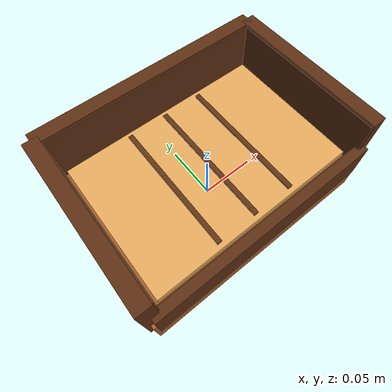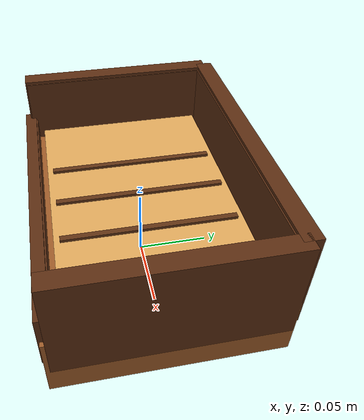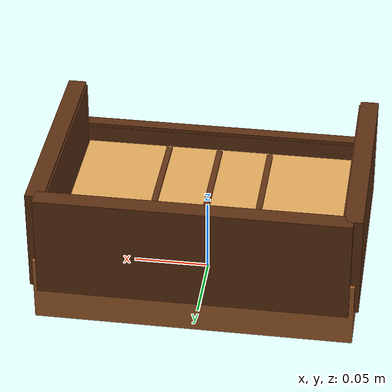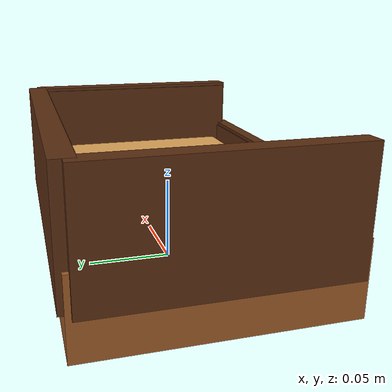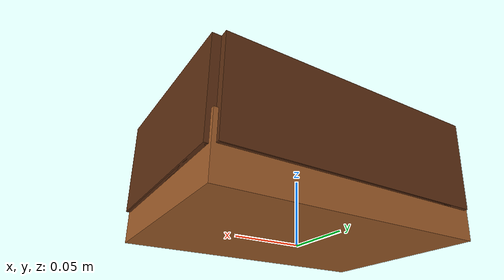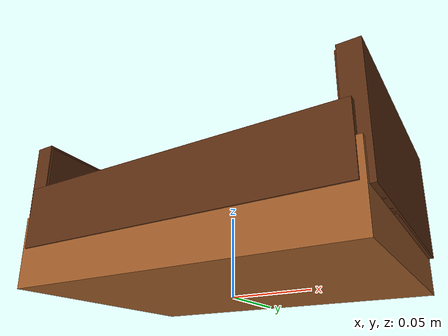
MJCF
<mujoco model="bottle_storage_rack">
  <asset>
    <material name="rack_plastic" rgba="0.62 0.36 0.16 1" specular="0.10" shininess="0.06" />
    <material name="rack_floor" rgba="0.88 0.66 0.36 1" specular="0.08" shininess="0.04" />
    <material name="rack_grain" rgba="0.38 0.20 0.08 1" specular="0.04" shininess="0.03" />
    <material name="rack_edge" rgba="0.36 0.18 0.07 1" specular="0.12" shininess="0.06" />
    <material name="collision_invisible" rgba="0.8 0.8 0.8 0" />
  </asset>
  <worldbody>
    <body>
      <body name="object">
        <site name="contain_region" type="box" pos="0 0 0.105" quat="1 0 0 0" size="0.090 0.060 0.105"
              rgba="0 0 0 0" group="0" />
        <geom name="rack_base_collision" type="box" pos="0 0 0.025" size="0.102 0.072 0.022"
              material="collision_invisible" group="0"
              friction="1.30 0.55 0.10" solimp="0.998 0.998 0.001" solref="0.006 1" />
        <geom name="rack_base_visual" type="box" pos="0 0 0.025" size="0.104 0.074 0.022"
              material="rack_plastic" group="1" contype="0" conaffinity="0" />
        <geom name="rack_inner_floor_visual" type="box" pos="0 0 0.050" size="0.092 0.062 0.004"
              material="rack_floor" group="1" contype="0" conaffinity="0" />
        <geom name="wood_grain_1_visual" type="box" pos="-0.035 0 0.055" size="0.002 0.058 0.001"
              material="rack_grain" group="1" contype="0" conaffinity="0" />
        <geom name="wood_grain_2_visual" type="box" pos="0.000 0 0.055" size="0.002 0.058 0.001"
              material="rack_grain" group="1" contype="0" conaffinity="0" />
        <geom name="wood_grain_3_visual" type="box" pos="0.035 0 0.055" size="0.002 0.058 0.001"
              material="rack_grain" group="1" contype="0" conaffinity="0" />
        <geom name="rack_back_rail" type="box" pos="0 0.070 0.060" size="0.100 0.006 0.034"
              material="rack_edge" group="0" friction="1.20 0.45 0.10" />
        <geom name="rack_back_rail_visual" type="box" pos="0 0.071 0.061" size="0.101 0.006 0.035"
              material="rack_edge" group="1" contype="0" conaffinity="0" />
        <geom name="rack_left_rail" type="box" pos="-0.100 0 0.060" size="0.006 0.070 0.034"
              material="rack_edge" group="0" friction="1.20 0.45 0.10" />
        <geom name="rack_left_rail_visual" type="box" pos="-0.101 0 0.061" size="0.006 0.071 0.035"
              material="rack_edge" group="1" contype="0" conaffinity="0" />
        <geom name="rack_right_rail" type="box" pos="0.100 0 0.060" size="0.006 0.070 0.034"
              material="rack_edge" group="0" friction="1.20 0.45 0.10" />
        <geom name="rack_right_rail_visual" type="box" pos="0.101 0 0.061" size="0.006 0.071 0.035"
              material="rack_edge" group="1" contype="0" conaffinity="0" />
        <geom name="rack_front_lip" type="box" pos="0 -0.070 0.045" size="0.100 0.004 0.018"
              material="rack_edge" group="0" friction="1.20 0.45 0.10" />
        <geom name="rack_front_lip_visual" type="box" pos="0 -0.071 0.046" size="0.101 0.004 0.019"
              material="rack_edge" group="1" contype="0" conaffinity="0" />
      </body>
      <site name="bottom_site" pos="0 0 0.000" quat="1 0 0 0" size="0.004" rgba="0 0 0 0"/>
      <site name="top_site" pos="0 0 0.095" quat="1 0 0 0" size="0.004" rgba="0 0 0 0"/>
      <site name="horizontal_radius_site" pos="0.106 0.076 0.047" quat="1 0 0 0" size="0.004" rgba="0 0 0 0"/>
    </body>
  </worldbody>
</mujoco>
